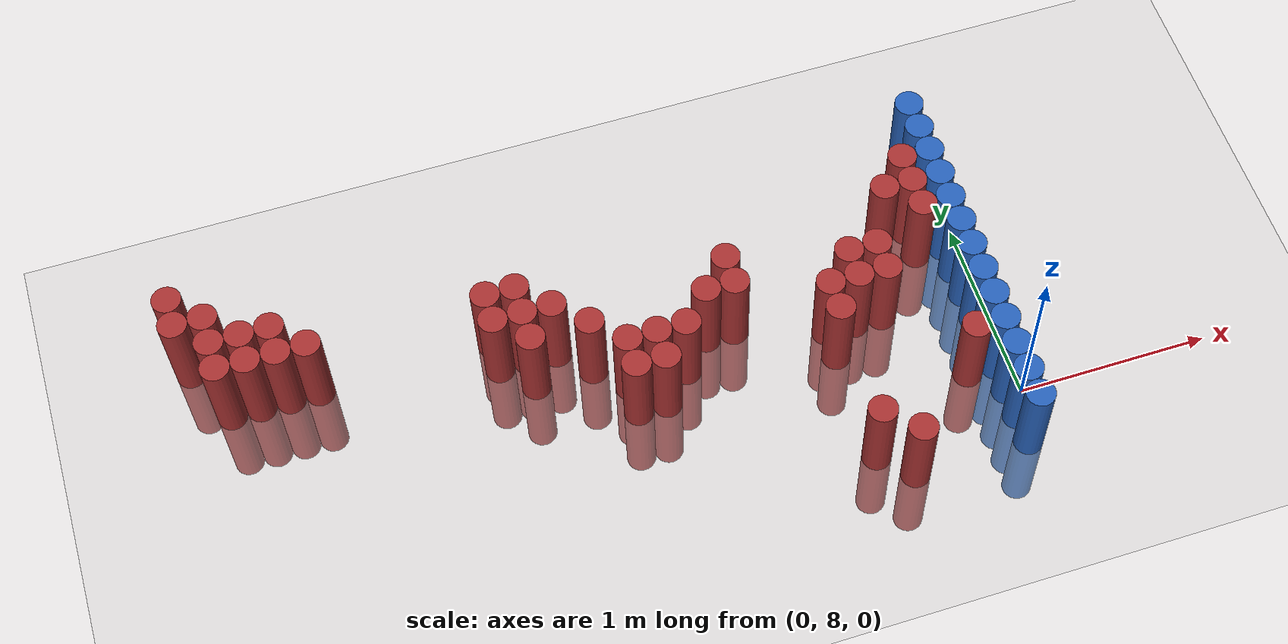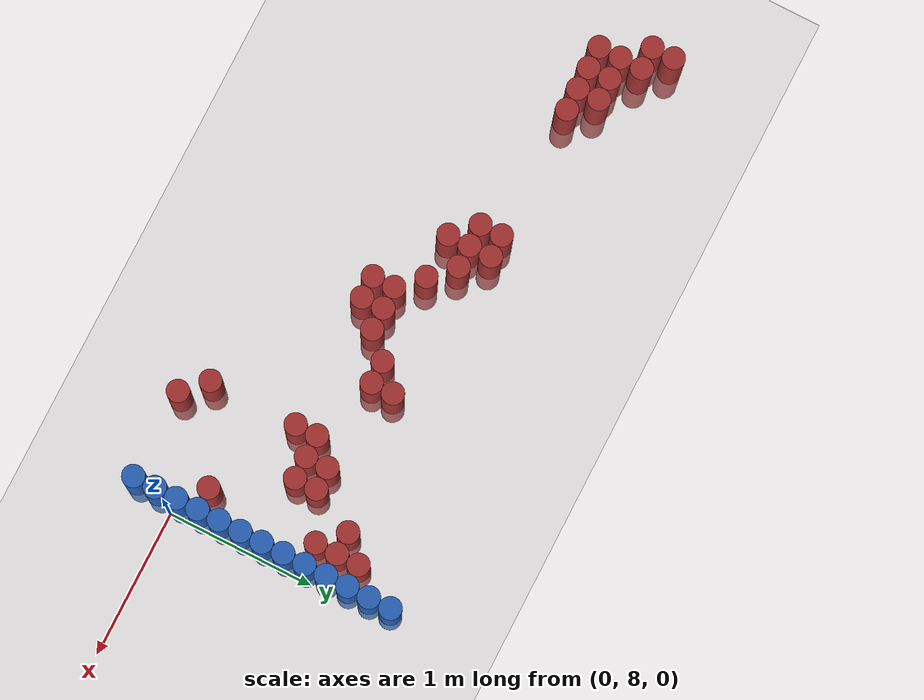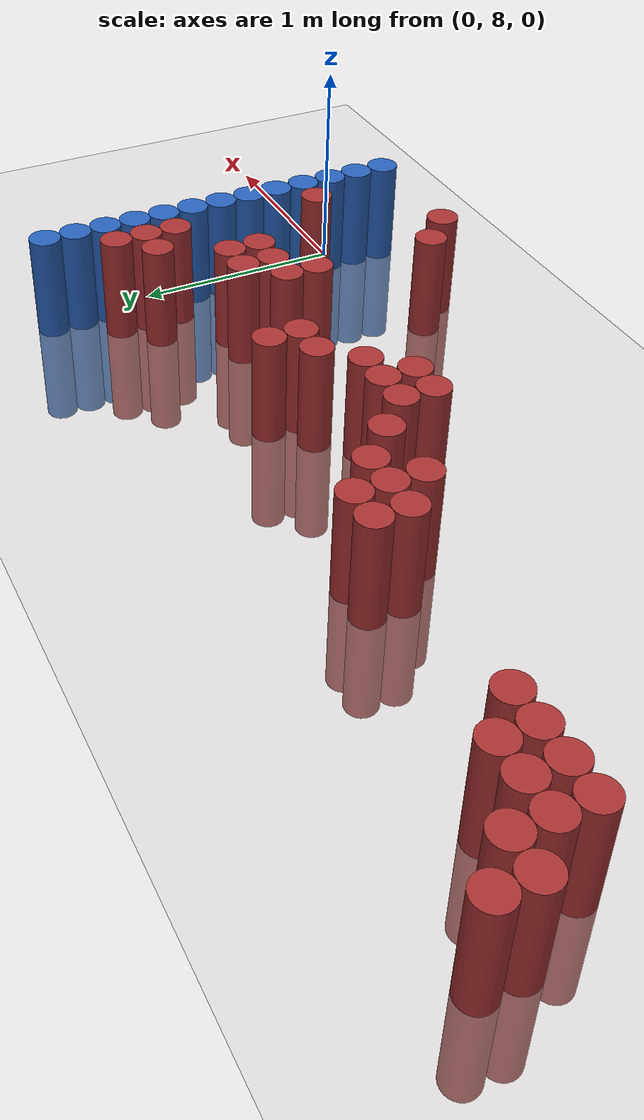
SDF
<sdf version="1.6">
 <world name="default">
  <model name="ground_plane">
   <static>1</static>
   <link name="link">
    <collision name="collision">
     <geometry><plane><normal>0 0 1</normal><size>100 100</size></plane></geometry>
     <surface><friction><ode><mu>100</mu><mu2>50</mu2></ode></friction></surface>
    </collision>
    <visual name="visual">
     <cast_shadows>0</cast_shadows>
     <geometry><plane><normal>0 0 1</normal><size>100 100</size></plane></geometry>
     <material>
      <script><uri>file://media/materials/scripts/gazebo.material</uri><name>Gazebo/Grey</name></script>
     </material>
    </visual>
   </link>
  </model>
  <model name="unit_cylinder_150">
   <static>1</static>
   <pose>-3.975000 9.375000 0.000000 0.000000 0.000000 0.000000</pose>
   <link name="link">
    <inertial>
     <mass>1</mass>
     <inertia><ixx>0.145833</ixx><ixy>0</ixy><ixz>0</ixz><iyy>0.145833</iyy><iyz>0</iyz><izz>0.125</izz></inertia>
    </inertial>
    <collision name="collision">
     <geometry><cylinder><radius>0.075000</radius><length>1</length></cylinder></geometry>
    </collision>
    <visual name="visual">
     <geometry><cylinder><radius>0.075000</radius><length>1</length></cylinder></geometry>
     <material>
      <ambient>0.648000 0.192000 0.192000 1</ambient>
      <diffuse>0.648000 0.192000 0.192000 1</diffuse>
     </material>
     <material>
      <script><name>Gazebo/Grey</name><uri>file://media/materials/scripts/gazebo.material</uri></script>
     </material>
    </visual>
   </link>
  </model>
  <model name="unit_cylinder_151">
   <static>1</static>
   <pose>-3.975000 9.525000 0.000000 0.000000 0.000000 0.000000</pose>
   <link name="link">
    <inertial>
     <mass>1</mass>
     <inertia><ixx>0.145833</ixx><ixy>0</ixy><ixz>0</ixz><iyy>0.145833</iyy><iyz>0</iyz><izz>0.125</izz></inertia>
    </inertial>
    <collision name="collision">
     <geometry><cylinder><radius>0.075000</radius><length>1</length></cylinder></geometry>
    </collision>
    <visual name="visual">
     <geometry><cylinder><radius>0.075000</radius><length>1</length></cylinder></geometry>
     <material>
      <ambient>0.648000 0.192000 0.192000 1</ambient>
      <diffuse>0.648000 0.192000 0.192000 1</diffuse>
     </material>
     <material>
      <script><name>Gazebo/Grey</name><uri>file://media/materials/scripts/gazebo.material</uri></script>
     </material>
    </visual>
   </link>
  </model>
  <model name="unit_cylinder_158">
   <static>1</static>
   <pose>-3.825000 9.075000 0.000000 0.000000 0.000000 0.000000</pose>
   <link name="link">
    <inertial>
     <mass>1</mass>
     <inertia><ixx>0.145833</ixx><ixy>0</ixy><ixz>0</ixz><iyy>0.145833</iyy><iyz>0</iyz><izz>0.125</izz></inertia>
    </inertial>
    <collision name="collision">
     <geometry><cylinder><radius>0.075000</radius><length>1</length></cylinder></geometry>
    </collision>
    <visual name="visual">
     <geometry><cylinder><radius>0.075000</radius><length>1</length></cylinder></geometry>
     <material>
      <ambient>0.648000 0.192000 0.192000 1</ambient>
      <diffuse>0.648000 0.192000 0.192000 1</diffuse>
     </material>
     <material>
      <script><name>Gazebo/Grey</name><uri>file://media/materials/scripts/gazebo.material</uri></script>
     </material>
    </visual>
   </link>
  </model>
  <model name="unit_cylinder_159">
   <static>1</static>
   <pose>-3.825000 9.225000 0.000000 0.000000 0.000000 0.000000</pose>
   <link name="link">
    <inertial>
     <mass>1</mass>
     <inertia><ixx>0.145833</ixx><ixy>0</ixy><ixz>0</ixz><iyy>0.145833</iyy><iyz>0</iyz><izz>0.125</izz></inertia>
    </inertial>
    <collision name="collision">
     <geometry><cylinder><radius>0.075000</radius><length>1</length></cylinder></geometry>
    </collision>
    <visual name="visual">
     <geometry><cylinder><radius>0.075000</radius><length>1</length></cylinder></geometry>
     <material>
      <ambient>0.648000 0.192000 0.192000 1</ambient>
      <diffuse>0.648000 0.192000 0.192000 1</diffuse>
     </material>
     <material>
      <script><name>Gazebo/Grey</name><uri>file://media/materials/scripts/gazebo.material</uri></script>
     </material>
    </visual>
   </link>
  </model>
  <model name="unit_cylinder_160">
   <static>1</static>
   <pose>-3.825000 9.375000 0.000000 0.000000 0.000000 0.000000</pose>
   <link name="link">
    <inertial>
     <mass>1</mass>
     <inertia><ixx>0.145833</ixx><ixy>0</ixy><ixz>0</ixz><iyy>0.145833</iyy><iyz>0</iyz><izz>0.125</izz></inertia>
    </inertial>
    <collision name="collision">
     <geometry><cylinder><radius>0.075000</radius><length>1</length></cylinder></geometry>
    </collision>
    <visual name="visual">
     <geometry><cylinder><radius>0.075000</radius><length>1</length></cylinder></geometry>
     <material>
      <ambient>0.648000 0.192000 0.192000 1</ambient>
      <diffuse>0.648000 0.192000 0.192000 1</diffuse>
     </material>
     <material>
      <script><name>Gazebo/Grey</name><uri>file://media/materials/scripts/gazebo.material</uri></script>
     </material>
    </visual>
   </link>
  </model>
  <model name="unit_cylinder_165">
   <static>1</static>
   <pose>-3.675000 9.075000 0.000000 0.000000 0.000000 0.000000</pose>
   <link name="link">
    <inertial>
     <mass>1</mass>
     <inertia><ixx>0.145833</ixx><ixy>0</ixy><ixz>0</ixz><iyy>0.145833</iyy><iyz>0</iyz><izz>0.125</izz></inertia>
    </inertial>
    <collision name="collision">
     <geometry><cylinder><radius>0.075000</radius><length>1</length></cylinder></geometry>
    </collision>
    <visual name="visual">
     <geometry><cylinder><radius>0.075000</radius><length>1</length></cylinder></geometry>
     <material>
      <ambient>0.648000 0.192000 0.192000 1</ambient>
      <diffuse>0.648000 0.192000 0.192000 1</diffuse>
     </material>
     <material>
      <script><name>Gazebo/Grey</name><uri>file://media/materials/scripts/gazebo.material</uri></script>
     </material>
    </visual>
   </link>
  </model>
  <model name="unit_cylinder_166">
   <static>1</static>
   <pose>-3.675000 9.225000 0.000000 0.000000 0.000000 0.000000</pose>
   <link name="link">
    <inertial>
     <mass>1</mass>
     <inertia><ixx>0.145833</ixx><ixy>0</ixy><ixz>0</ixz><iyy>0.145833</iyy><iyz>0</iyz><izz>0.125</izz></inertia>
    </inertial>
    <collision name="collision">
     <geometry><cylinder><radius>0.075000</radius><length>1</length></cylinder></geometry>
    </collision>
    <visual name="visual">
     <geometry><cylinder><radius>0.075000</radius><length>1</length></cylinder></geometry>
     <material>
      <ambient>0.648000 0.192000 0.192000 1</ambient>
      <diffuse>0.648000 0.192000 0.192000 1</diffuse>
     </material>
     <material>
      <script><name>Gazebo/Grey</name><uri>file://media/materials/scripts/gazebo.material</uri></script>
     </material>
    </visual>
   </link>
  </model>
  <model name="unit_cylinder_168">
   <static>1</static>
   <pose>-3.525000 9.075000 0.000000 0.000000 0.000000 0.000000</pose>
   <link name="link">
    <inertial>
     <mass>1</mass>
     <inertia><ixx>0.145833</ixx><ixy>0</ixy><ixz>0</ixz><iyy>0.145833</iyy><iyz>0</iyz><izz>0.125</izz></inertia>
    </inertial>
    <collision name="collision">
     <geometry><cylinder><radius>0.075000</radius><length>1</length></cylinder></geometry>
    </collision>
    <visual name="visual">
     <geometry><cylinder><radius>0.075000</radius><length>1</length></cylinder></geometry>
     <material>
      <ambient>0.648000 0.192000 0.192000 1</ambient>
      <diffuse>0.648000 0.192000 0.192000 1</diffuse>
     </material>
     <material>
      <script><name>Gazebo/Grey</name><uri>file://media/materials/scripts/gazebo.material</uri></script>
     </material>
    </visual>
   </link>
  </model>
  <model name="unit_cylinder_169">
   <static>1</static>
   <pose>-3.525000 9.225000 0.000000 0.000000 0.000000 0.000000</pose>
   <link name="link">
    <inertial>
     <mass>1</mass>
     <inertia><ixx>0.145833</ixx><ixy>0</ixy><ixz>0</ixz><iyy>0.145833</iyy><iyz>0</iyz><izz>0.125</izz></inertia>
    </inertial>
    <collision name="collision">
     <geometry><cylinder><radius>0.075000</radius><length>1</length></cylinder></geometry>
    </collision>
    <visual name="visual">
     <geometry><cylinder><radius>0.075000</radius><length>1</length></cylinder></geometry>
     <material>
      <ambient>0.648000 0.192000 0.192000 1</ambient>
      <diffuse>0.648000 0.192000 0.192000 1</diffuse>
     </material>
     <material>
      <script><name>Gazebo/Grey</name><uri>file://media/materials/scripts/gazebo.material</uri></script>
     </material>
    </visual>
   </link>
  </model>
  <model name="unit_cylinder_170">
   <static>1</static>
   <pose>-3.375000 9.075000 0.000000 0.000000 0.000000 0.000000</pose>
   <link name="link">
    <inertial>
     <mass>1</mass>
     <inertia><ixx>0.145833</ixx><ixy>0</ixy><ixz>0</ixz><iyy>0.145833</iyy><iyz>0</iyz><izz>0.125</izz></inertia>
    </inertial>
    <collision name="collision">
     <geometry><cylinder><radius>0.075000</radius><length>1</length></cylinder></geometry>
    </collision>
    <visual name="visual">
     <geometry><cylinder><radius>0.075000</radius><length>1</length></cylinder></geometry>
     <material>
      <ambient>0.648000 0.192000 0.192000 1</ambient>
      <diffuse>0.648000 0.192000 0.192000 1</diffuse>
     </material>
     <material>
      <script><name>Gazebo/Grey</name><uri>file://media/materials/scripts/gazebo.material</uri></script>
     </material>
    </visual>
   </link>
  </model>
  <model name="unit_cylinder_179">
   <static>1</static>
   <pose>-2.475000 8.925000 0.000000 0.000000 0.000000 0.000000</pose>
   <link name="link">
    <inertial>
     <mass>1</mass>
     <inertia><ixx>0.145833</ixx><ixy>0</ixy><ixz>0</ixz><iyy>0.145833</iyy><iyz>0</iyz><izz>0.125</izz></inertia>
    </inertial>
    <collision name="collision">
     <geometry><cylinder><radius>0.075000</radius><length>1</length></cylinder></geometry>
    </collision>
    <visual name="visual">
     <geometry><cylinder><radius>0.075000</radius><length>1</length></cylinder></geometry>
     <material>
      <ambient>0.648000 0.192000 0.192000 1</ambient>
      <diffuse>0.648000 0.192000 0.192000 1</diffuse>
     </material>
     <material>
      <script><name>Gazebo/Grey</name><uri>file://media/materials/scripts/gazebo.material</uri></script>
     </material>
    </visual>
   </link>
  </model>
  <model name="unit_cylinder_180">
   <static>1</static>
   <pose>-2.475000 9.075000 0.000000 0.000000 0.000000 0.000000</pose>
   <link name="link">
    <inertial>
     <mass>1</mass>
     <inertia><ixx>0.145833</ixx><ixy>0</ixy><ixz>0</ixz><iyy>0.145833</iyy><iyz>0</iyz><izz>0.125</izz></inertia>
    </inertial>
    <collision name="collision">
     <geometry><cylinder><radius>0.075000</radius><length>1</length></cylinder></geometry>
    </collision>
    <visual name="visual">
     <geometry><cylinder><radius>0.075000</radius><length>1</length></cylinder></geometry>
     <material>
      <ambient>0.648000 0.192000 0.192000 1</ambient>
      <diffuse>0.648000 0.192000 0.192000 1</diffuse>
     </material>
     <material>
      <script><name>Gazebo/Grey</name><uri>file://media/materials/scripts/gazebo.material</uri></script>
     </material>
    </visual>
   </link>
  </model>
  <model name="unit_cylinder_181">
   <static>1</static>
   <pose>-2.325000 8.775000 0.000000 0.000000 0.000000 0.000000</pose>
   <link name="link">
    <inertial>
     <mass>1</mass>
     <inertia><ixx>0.145833</ixx><ixy>0</ixy><ixz>0</ixz><iyy>0.145833</iyy><iyz>0</iyz><izz>0.125</izz></inertia>
    </inertial>
    <collision name="collision">
     <geometry><cylinder><radius>0.075000</radius><length>1</length></cylinder></geometry>
    </collision>
    <visual name="visual">
     <geometry><cylinder><radius>0.075000</radius><length>1</length></cylinder></geometry>
     <material>
      <ambient>0.648000 0.192000 0.192000 1</ambient>
      <diffuse>0.648000 0.192000 0.192000 1</diffuse>
     </material>
     <material>
      <script><name>Gazebo/Grey</name><uri>file://media/materials/scripts/gazebo.material</uri></script>
     </material>
    </visual>
   </link>
  </model>
  <model name="unit_cylinder_182">
   <static>1</static>
   <pose>-2.325000 8.925000 0.000000 0.000000 0.000000 0.000000</pose>
   <link name="link">
    <inertial>
     <mass>1</mass>
     <inertia><ixx>0.145833</ixx><ixy>0</ixy><ixz>0</ixz><iyy>0.145833</iyy><iyz>0</iyz><izz>0.125</izz></inertia>
    </inertial>
    <collision name="collision">
     <geometry><cylinder><radius>0.075000</radius><length>1</length></cylinder></geometry>
    </collision>
    <visual name="visual">
     <geometry><cylinder><radius>0.075000</radius><length>1</length></cylinder></geometry>
     <material>
      <ambient>0.648000 0.192000 0.192000 1</ambient>
      <diffuse>0.648000 0.192000 0.192000 1</diffuse>
     </material>
     <material>
      <script><name>Gazebo/Grey</name><uri>file://media/materials/scripts/gazebo.material</uri></script>
     </material>
    </visual>
   </link>
  </model>
  <model name="unit_cylinder_183">
   <static>1</static>
   <pose>-2.325000 9.075000 0.000000 0.000000 0.000000 0.000000</pose>
   <link name="link">
    <inertial>
     <mass>1</mass>
     <inertia><ixx>0.145833</ixx><ixy>0</ixy><ixz>0</ixz><iyy>0.145833</iyy><iyz>0</iyz><izz>0.125</izz></inertia>
    </inertial>
    <collision name="collision">
     <geometry><cylinder><radius>0.075000</radius><length>1</length></cylinder></geometry>
    </collision>
    <visual name="visual">
     <geometry><cylinder><radius>0.075000</radius><length>1</length></cylinder></geometry>
     <material>
      <ambient>0.648000 0.192000 0.192000 1</ambient>
      <diffuse>0.648000 0.192000 0.192000 1</diffuse>
     </material>
     <material>
      <script><name>Gazebo/Grey</name><uri>file://media/materials/scripts/gazebo.material</uri></script>
     </material>
    </visual>
   </link>
  </model>
  <model name="unit_cylinder_184">
   <static>1</static>
   <pose>-2.175000 8.925000 0.000000 0.000000 0.000000 0.000000</pose>
   <link name="link">
    <inertial>
     <mass>1</mass>
     <inertia><ixx>0.145833</ixx><ixy>0</ixy><ixz>0</ixz><iyy>0.145833</iyy><iyz>0</iyz><izz>0.125</izz></inertia>
    </inertial>
    <collision name="collision">
     <geometry><cylinder><radius>0.075000</radius><length>1</length></cylinder></geometry>
    </collision>
    <visual name="visual">
     <geometry><cylinder><radius>0.075000</radius><length>1</length></cylinder></geometry>
     <material>
      <ambient>0.648000 0.192000 0.192000 1</ambient>
      <diffuse>0.648000 0.192000 0.192000 1</diffuse>
     </material>
     <material>
      <script><name>Gazebo/Grey</name><uri>file://media/materials/scripts/gazebo.material</uri></script>
     </material>
    </visual>
   </link>
  </model>
  <model name="unit_cylinder_185">
   <static>1</static>
   <pose>-2.025000 8.775000 0.000000 0.000000 0.000000 0.000000</pose>
   <link name="link">
    <inertial>
     <mass>1</mass>
     <inertia><ixx>0.145833</ixx><ixy>0</ixy><ixz>0</ixz><iyy>0.145833</iyy><iyz>0</iyz><izz>0.125</izz></inertia>
    </inertial>
    <collision name="collision">
     <geometry><cylinder><radius>0.075000</radius><length>1</length></cylinder></geometry>
    </collision>
    <visual name="visual">
     <geometry><cylinder><radius>0.075000</radius><length>1</length></cylinder></geometry>
     <material>
      <ambient>0.648000 0.192000 0.192000 1</ambient>
      <diffuse>0.648000 0.192000 0.192000 1</diffuse>
     </material>
     <material>
      <script><name>Gazebo/Grey</name><uri>file://media/materials/scripts/gazebo.material</uri></script>
     </material>
    </visual>
   </link>
  </model>
  <model name="unit_cylinder_186">
   <static>1</static>
   <pose>-1.875000 8.475000 0.000000 0.000000 0.000000 0.000000</pose>
   <link name="link">
    <inertial>
     <mass>1</mass>
     <inertia><ixx>0.145833</ixx><ixy>0</ixy><ixz>0</ixz><iyy>0.145833</iyy><iyz>0</iyz><izz>0.125</izz></inertia>
    </inertial>
    <collision name="collision">
     <geometry><cylinder><radius>0.075000</radius><length>1</length></cylinder></geometry>
    </collision>
    <visual name="visual">
     <geometry><cylinder><radius>0.075000</radius><length>1</length></cylinder></geometry>
     <material>
      <ambient>0.648000 0.192000 0.192000 1</ambient>
      <diffuse>0.648000 0.192000 0.192000 1</diffuse>
     </material>
     <material>
      <script><name>Gazebo/Grey</name><uri>file://media/materials/scripts/gazebo.material</uri></script>
     </material>
    </visual>
   </link>
  </model>
  <model name="unit_cylinder_187">
   <static>1</static>
   <pose>-1.875000 8.625000 0.000000 0.000000 0.000000 0.000000</pose>
   <link name="link">
    <inertial>
     <mass>1</mass>
     <inertia><ixx>0.145833</ixx><ixy>0</ixy><ixz>0</ixz><iyy>0.145833</iyy><iyz>0</iyz><izz>0.125</izz></inertia>
    </inertial>
    <collision name="collision">
     <geometry><cylinder><radius>0.075000</radius><length>1</length></cylinder></geometry>
    </collision>
    <visual name="visual">
     <geometry><cylinder><radius>0.075000</radius><length>1</length></cylinder></geometry>
     <material>
      <ambient>0.648000 0.192000 0.192000 1</ambient>
      <diffuse>0.648000 0.192000 0.192000 1</diffuse>
     </material>
     <material>
      <script><name>Gazebo/Grey</name><uri>file://media/materials/scripts/gazebo.material</uri></script>
     </material>
    </visual>
   </link>
  </model>
  <model name="unit_cylinder_188">
   <static>1</static>
   <pose>-1.725000 8.475000 0.000000 0.000000 0.000000 0.000000</pose>
   <link name="link">
    <inertial>
     <mass>1</mass>
     <inertia><ixx>0.145833</ixx><ixy>0</ixy><ixz>0</ixz><iyy>0.145833</iyy><iyz>0</iyz><izz>0.125</izz></inertia>
    </inertial>
    <collision name="collision">
     <geometry><cylinder><radius>0.075000</radius><length>1</length></cylinder></geometry>
    </collision>
    <visual name="visual">
     <geometry><cylinder><radius>0.075000</radius><length>1</length></cylinder></geometry>
     <material>
      <ambient>0.648000 0.192000 0.192000 1</ambient>
      <diffuse>0.648000 0.192000 0.192000 1</diffuse>
     </material>
     <material>
      <script><name>Gazebo/Grey</name><uri>file://media/materials/scripts/gazebo.material</uri></script>
     </material>
    </visual>
   </link>
  </model>
  <model name="unit_cylinder_189">
   <static>1</static>
   <pose>-1.725000 8.625000 0.000000 0.000000 0.000000 0.000000</pose>
   <link name="link">
    <inertial>
     <mass>1</mass>
     <inertia><ixx>0.145833</ixx><ixy>0</ixy><ixz>0</ixz><iyy>0.145833</iyy><iyz>0</iyz><izz>0.125</izz></inertia>
    </inertial>
    <collision name="collision">
     <geometry><cylinder><radius>0.075000</radius><length>1</length></cylinder></geometry>
    </collision>
    <visual name="visual">
     <geometry><cylinder><radius>0.075000</radius><length>1</length></cylinder></geometry>
     <material>
      <ambient>0.648000 0.192000 0.192000 1</ambient>
      <diffuse>0.648000 0.192000 0.192000 1</diffuse>
     </material>
     <material>
      <script><name>Gazebo/Grey</name><uri>file://media/materials/scripts/gazebo.material</uri></script>
     </material>
    </visual>
   </link>
  </model>
  <model name="unit_cylinder_192">
   <static>1</static>
   <pose>-1.575000 8.625000 0.000000 0.000000 0.000000 0.000000</pose>
   <link name="link">
    <inertial>
     <mass>1</mass>
     <inertia><ixx>0.145833</ixx><ixy>0</ixy><ixz>0</ixz><iyy>0.145833</iyy><iyz>0</iyz><izz>0.125</izz></inertia>
    </inertial>
    <collision name="collision">
     <geometry><cylinder><radius>0.075000</radius><length>1</length></cylinder></geometry>
    </collision>
    <visual name="visual">
     <geometry><cylinder><radius>0.075000</radius><length>1</length></cylinder></geometry>
     <material>
      <ambient>0.648000 0.192000 0.192000 1</ambient>
      <diffuse>0.648000 0.192000 0.192000 1</diffuse>
     </material>
     <material>
      <script><name>Gazebo/Grey</name><uri>file://media/materials/scripts/gazebo.material</uri></script>
     </material>
    </visual>
   </link>
  </model>
  <model name="unit_cylinder_196">
   <static>1</static>
   <pose>-1.425000 8.775000 0.000000 0.000000 0.000000 0.000000</pose>
   <link name="link">
    <inertial>
     <mass>1</mass>
     <inertia><ixx>0.145833</ixx><ixy>0</ixy><ixz>0</ixz><iyy>0.145833</iyy><iyz>0</iyz><izz>0.125</izz></inertia>
    </inertial>
    <collision name="collision">
     <geometry><cylinder><radius>0.075000</radius><length>1</length></cylinder></geometry>
    </collision>
    <visual name="visual">
     <geometry><cylinder><radius>0.075000</radius><length>1</length></cylinder></geometry>
     <material>
      <ambient>0.648000 0.192000 0.192000 1</ambient>
      <diffuse>0.648000 0.192000 0.192000 1</diffuse>
     </material>
     <material>
      <script><name>Gazebo/Grey</name><uri>file://media/materials/scripts/gazebo.material</uri></script>
     </material>
    </visual>
   </link>
  </model>
  <model name="unit_cylinder_199">
   <static>1</static>
   <pose>-1.275000 8.775000 0.000000 0.000000 0.000000 0.000000</pose>
   <link name="link">
    <inertial>
     <mass>1</mass>
     <inertia><ixx>0.145833</ixx><ixy>0</ixy><ixz>0</ixz><iyy>0.145833</iyy><iyz>0</iyz><izz>0.125</izz></inertia>
    </inertial>
    <collision name="collision">
     <geometry><cylinder><radius>0.075000</radius><length>1</length></cylinder></geometry>
    </collision>
    <visual name="visual">
     <geometry><cylinder><radius>0.075000</radius><length>1</length></cylinder></geometry>
     <material>
      <ambient>0.648000 0.192000 0.192000 1</ambient>
      <diffuse>0.648000 0.192000 0.192000 1</diffuse>
     </material>
     <material>
      <script><name>Gazebo/Grey</name><uri>file://media/materials/scripts/gazebo.material</uri></script>
     </material>
    </visual>
   </link>
  </model>
  <model name="unit_cylinder_200">
   <static>1</static>
   <pose>-1.275000 8.925000 0.000000 0.000000 0.000000 0.000000</pose>
   <link name="link">
    <inertial>
     <mass>1</mass>
     <inertia><ixx>0.145833</ixx><ixy>0</ixy><ixz>0</ixz><iyy>0.145833</iyy><iyz>0</iyz><izz>0.125</izz></inertia>
    </inertial>
    <collision name="collision">
     <geometry><cylinder><radius>0.075000</radius><length>1</length></cylinder></geometry>
    </collision>
    <visual name="visual">
     <geometry><cylinder><radius>0.075000</radius><length>1</length></cylinder></geometry>
     <material>
      <ambient>0.648000 0.192000 0.192000 1</ambient>
      <diffuse>0.648000 0.192000 0.192000 1</diffuse>
     </material>
     <material>
      <script><name>Gazebo/Grey</name><uri>file://media/materials/scripts/gazebo.material</uri></script>
     </material>
    </visual>
   </link>
  </model>
  <model name="unit_cylinder_208">
   <static>1</static>
   <pose>-0.825000 7.875000 0.000000 0.000000 0.000000 0.000000</pose>
   <link name="link">
    <inertial>
     <mass>1</mass>
     <inertia><ixx>0.145833</ixx><ixy>0</ixy><ixz>0</ixz><iyy>0.145833</iyy><iyz>0</iyz><izz>0.125</izz></inertia>
    </inertial>
    <collision name="collision">
     <geometry><cylinder><radius>0.075000</radius><length>1</length></cylinder></geometry>
    </collision>
    <visual name="visual">
     <geometry><cylinder><radius>0.075000</radius><length>1</length></cylinder></geometry>
     <material>
      <ambient>0.648000 0.192000 0.192000 1</ambient>
      <diffuse>0.648000 0.192000 0.192000 1</diffuse>
     </material>
     <material>
      <script><name>Gazebo/Grey</name><uri>file://media/materials/scripts/gazebo.material</uri></script>
     </material>
    </visual>
   </link>
  </model>
  <model name="unit_cylinder_209">
   <static>1</static>
   <pose>-0.825000 8.475000 0.000000 0.000000 0.000000 0.000000</pose>
   <link name="link">
    <inertial>
     <mass>1</mass>
     <inertia><ixx>0.145833</ixx><ixy>0</ixy><ixz>0</ixz><iyy>0.145833</iyy><iyz>0</iyz><izz>0.125</izz></inertia>
    </inertial>
    <collision name="collision">
     <geometry><cylinder><radius>0.075000</radius><length>1</length></cylinder></geometry>
    </collision>
    <visual name="visual">
     <geometry><cylinder><radius>0.075000</radius><length>1</length></cylinder></geometry>
     <material>
      <ambient>0.648000 0.192000 0.192000 1</ambient>
      <diffuse>0.648000 0.192000 0.192000 1</diffuse>
     </material>
     <material>
      <script><name>Gazebo/Grey</name><uri>file://media/materials/scripts/gazebo.material</uri></script>
     </material>
    </visual>
   </link>
  </model>
  <model name="unit_cylinder_210">
   <static>1</static>
   <pose>-0.825000 8.625000 0.000000 0.000000 0.000000 0.000000</pose>
   <link name="link">
    <inertial>
     <mass>1</mass>
     <inertia><ixx>0.145833</ixx><ixy>0</ixy><ixz>0</ixz><iyy>0.145833</iyy><iyz>0</iyz><izz>0.125</izz></inertia>
    </inertial>
    <collision name="collision">
     <geometry><cylinder><radius>0.075000</radius><length>1</length></cylinder></geometry>
    </collision>
    <visual name="visual">
     <geometry><cylinder><radius>0.075000</radius><length>1</length></cylinder></geometry>
     <material>
      <ambient>0.648000 0.192000 0.192000 1</ambient>
      <diffuse>0.648000 0.192000 0.192000 1</diffuse>
     </material>
     <material>
      <script><name>Gazebo/Grey</name><uri>file://media/materials/scripts/gazebo.material</uri></script>
     </material>
    </visual>
   </link>
  </model>
  <model name="unit_cylinder_211">
   <static>1</static>
   <pose>-0.675000 7.725000 0.000000 0.000000 0.000000 0.000000</pose>
   <link name="link">
    <inertial>
     <mass>1</mass>
     <inertia><ixx>0.145833</ixx><ixy>0</ixy><ixz>0</ixz><iyy>0.145833</iyy><iyz>0</iyz><izz>0.125</izz></inertia>
    </inertial>
    <collision name="collision">
     <geometry><cylinder><radius>0.075000</radius><length>1</length></cylinder></geometry>
    </collision>
    <visual name="visual">
     <geometry><cylinder><radius>0.075000</radius><length>1</length></cylinder></geometry>
     <material>
      <ambient>0.648000 0.192000 0.192000 1</ambient>
      <diffuse>0.648000 0.192000 0.192000 1</diffuse>
     </material>
     <material>
      <script><name>Gazebo/Grey</name><uri>file://media/materials/scripts/gazebo.material</uri></script>
     </material>
    </visual>
   </link>
  </model>
  <model name="unit_cylinder_212">
   <static>1</static>
   <pose>-0.675000 8.625000 0.000000 0.000000 0.000000 0.000000</pose>
   <link name="link">
    <inertial>
     <mass>1</mass>
     <inertia><ixx>0.145833</ixx><ixy>0</ixy><ixz>0</ixz><iyy>0.145833</iyy><iyz>0</iyz><izz>0.125</izz></inertia>
    </inertial>
    <collision name="collision">
     <geometry><cylinder><radius>0.075000</radius><length>1</length></cylinder></geometry>
    </collision>
    <visual name="visual">
     <geometry><cylinder><radius>0.075000</radius><length>1</length></cylinder></geometry>
     <material>
      <ambient>0.648000 0.192000 0.192000 1</ambient>
      <diffuse>0.648000 0.192000 0.192000 1</diffuse>
     </material>
     <material>
      <script><name>Gazebo/Grey</name><uri>file://media/materials/scripts/gazebo.material</uri></script>
     </material>
    </visual>
   </link>
  </model>
  <model name="unit_cylinder_213">
   <static>1</static>
   <pose>-0.675000 8.775000 0.000000 0.000000 0.000000 0.000000</pose>
   <link name="link">
    <inertial>
     <mass>1</mass>
     <inertia><ixx>0.145833</ixx><ixy>0</ixy><ixz>0</ixz><iyy>0.145833</iyy><iyz>0</iyz><izz>0.125</izz></inertia>
    </inertial>
    <collision name="collision">
     <geometry><cylinder><radius>0.075000</radius><length>1</length></cylinder></geometry>
    </collision>
    <visual name="visual">
     <geometry><cylinder><radius>0.075000</radius><length>1</length></cylinder></geometry>
     <material>
      <ambient>0.648000 0.192000 0.192000 1</ambient>
      <diffuse>0.648000 0.192000 0.192000 1</diffuse>
     </material>
     <material>
      <script><name>Gazebo/Grey</name><uri>file://media/materials/scripts/gazebo.material</uri></script>
     </material>
    </visual>
   </link>
  </model>
  <model name="unit_cylinder_214">
   <static>1</static>
   <pose>-0.525000 8.625000 0.000000 0.000000 0.000000 0.000000</pose>
   <link name="link">
    <inertial>
     <mass>1</mass>
     <inertia><ixx>0.145833</ixx><ixy>0</ixy><ixz>0</ixz><iyy>0.145833</iyy><iyz>0</iyz><izz>0.125</izz></inertia>
    </inertial>
    <collision name="collision">
     <geometry><cylinder><radius>0.075000</radius><length>1</length></cylinder></geometry>
    </collision>
    <visual name="visual">
     <geometry><cylinder><radius>0.075000</radius><length>1</length></cylinder></geometry>
     <material>
      <ambient>0.648000 0.192000 0.192000 1</ambient>
      <diffuse>0.648000 0.192000 0.192000 1</diffuse>
     </material>
     <material>
      <script><name>Gazebo/Grey</name><uri>file://media/materials/scripts/gazebo.material</uri></script>
     </material>
    </visual>
   </link>
  </model>
  <model name="unit_cylinder_215">
   <static>1</static>
   <pose>-0.525000 8.775000 0.000000 0.000000 0.000000 0.000000</pose>
   <link name="link">
    <inertial>
     <mass>1</mass>
     <inertia><ixx>0.145833</ixx><ixy>0</ixy><ixz>0</ixz><iyy>0.145833</iyy><iyz>0</iyz><izz>0.125</izz></inertia>
    </inertial>
    <collision name="collision">
     <geometry><cylinder><radius>0.075000</radius><length>1</length></cylinder></geometry>
    </collision>
    <visual name="visual">
     <geometry><cylinder><radius>0.075000</radius><length>1</length></cylinder></geometry>
     <material>
      <ambient>0.648000 0.192000 0.192000 1</ambient>
      <diffuse>0.648000 0.192000 0.192000 1</diffuse>
     </material>
     <material>
      <script><name>Gazebo/Grey</name><uri>file://media/materials/scripts/gazebo.material</uri></script>
     </material>
    </visual>
   </link>
  </model>
  <model name="unit_cylinder_216">
   <static>1</static>
   <pose>-0.375000 9.075000 0.000000 0.000000 0.000000 0.000000</pose>
   <link name="link">
    <inertial>
     <mass>1</mass>
     <inertia><ixx>0.145833</ixx><ixy>0</ixy><ixz>0</ixz><iyy>0.145833</iyy><iyz>0</iyz><izz>0.125</izz></inertia>
    </inertial>
    <collision name="collision">
     <geometry><cylinder><radius>0.075000</radius><length>1</length></cylinder></geometry>
    </collision>
    <visual name="visual">
     <geometry><cylinder><radius>0.075000</radius><length>1</length></cylinder></geometry>
     <material>
      <ambient>0.648000 0.192000 0.192000 1</ambient>
      <diffuse>0.648000 0.192000 0.192000 1</diffuse>
     </material>
     <material>
      <script><name>Gazebo/Grey</name><uri>file://media/materials/scripts/gazebo.material</uri></script>
     </material>
    </visual>
   </link>
  </model>
  <model name="unit_cylinder_222">
   <static>1</static>
   <pose>-0.225000 8.175000 0.000000 0.000000 0.000000 0.000000</pose>
   <link name="link">
    <inertial>
     <mass>1</mass>
     <inertia><ixx>0.145833</ixx><ixy>0</ixy><ixz>0</ixz><iyy>0.145833</iyy><iyz>0</iyz><izz>0.125</izz></inertia>
    </inertial>
    <collision name="collision">
     <geometry><cylinder><radius>0.075000</radius><length>1</length></cylinder></geometry>
    </collision>
    <visual name="visual">
     <geometry><cylinder><radius>0.075000</radius><length>1</length></cylinder></geometry>
     <material>
      <ambient>0.648000 0.192000 0.192000 1</ambient>
      <diffuse>0.648000 0.192000 0.192000 1</diffuse>
     </material>
     <material>
      <script><name>Gazebo/Grey</name><uri>file://media/materials/scripts/gazebo.material</uri></script>
     </material>
    </visual>
   </link>
  </model>
  <model name="unit_cylinder_223">
   <static>1</static>
   <pose>-0.225000 8.925000 0.000000 0.000000 0.000000 0.000000</pose>
   <link name="link">
    <inertial>
     <mass>1</mass>
     <inertia><ixx>0.145833</ixx><ixy>0</ixy><ixz>0</ixz><iyy>0.145833</iyy><iyz>0</iyz><izz>0.125</izz></inertia>
    </inertial>
    <collision name="collision">
     <geometry><cylinder><radius>0.075000</radius><length>1</length></cylinder></geometry>
    </collision>
    <visual name="visual">
     <geometry><cylinder><radius>0.075000</radius><length>1</length></cylinder></geometry>
     <material>
      <ambient>0.648000 0.192000 0.192000 1</ambient>
      <diffuse>0.648000 0.192000 0.192000 1</diffuse>
     </material>
     <material>
      <script><name>Gazebo/Grey</name><uri>file://media/materials/scripts/gazebo.material</uri></script>
     </material>
    </visual>
   </link>
  </model>
  <model name="unit_cylinder_224">
   <static>1</static>
   <pose>-0.225000 9.075000 0.000000 0.000000 0.000000 0.000000</pose>
   <link name="link">
    <inertial>
     <mass>1</mass>
     <inertia><ixx>0.145833</ixx><ixy>0</ixy><ixz>0</ixz><iyy>0.145833</iyy><iyz>0</iyz><izz>0.125</izz></inertia>
    </inertial>
    <collision name="collision">
     <geometry><cylinder><radius>0.075000</radius><length>1</length></cylinder></geometry>
    </collision>
    <visual name="visual">
     <geometry><cylinder><radius>0.075000</radius><length>1</length></cylinder></geometry>
     <material>
      <ambient>0.648000 0.192000 0.192000 1</ambient>
      <diffuse>0.648000 0.192000 0.192000 1</diffuse>
     </material>
     <material>
      <script><name>Gazebo/Grey</name><uri>file://media/materials/scripts/gazebo.material</uri></script>
     </material>
    </visual>
   </link>
  </model>
  <model name="unit_cylinder_225">
   <static>1</static>
   <pose>-0.225000 9.225000 0.000000 0.000000 0.000000 0.000000</pose>
   <link name="link">
    <inertial>
     <mass>1</mass>
     <inertia><ixx>0.145833</ixx><ixy>0</ixy><ixz>0</ixz><iyy>0.145833</iyy><iyz>0</iyz><izz>0.125</izz></inertia>
    </inertial>
    <collision name="collision">
     <geometry><cylinder><radius>0.075000</radius><length>1</length></cylinder></geometry>
    </collision>
    <visual name="visual">
     <geometry><cylinder><radius>0.075000</radius><length>1</length></cylinder></geometry>
     <material>
      <ambient>0.648000 0.192000 0.192000 1</ambient>
      <diffuse>0.648000 0.192000 0.192000 1</diffuse>
     </material>
     <material>
      <script><name>Gazebo/Grey</name><uri>file://media/materials/scripts/gazebo.material</uri></script>
     </material>
    </visual>
   </link>
  </model>
  <model name="unit_cylinder_243">
   <static>1</static>
   <pose>-0.075000 7.725000 0.000000 0.000000 0.000000 0.000000</pose>
   <link name="link">
    <inertial>
     <mass>1</mass>
     <inertia><ixx>0.145833</ixx><ixy>0</ixy><ixz>0</ixz><iyy>0.145833</iyy><iyz>0</iyz><izz>0.125</izz></inertia>
    </inertial>
    <collision name="collision">
     <geometry><cylinder><radius>0.075000</radius><length>1</length></cylinder></geometry>
    </collision>
    <visual name="visual">
     <geometry><cylinder><radius>0.075000</radius><length>1</length></cylinder></geometry>
     <material>
      <ambient>0.152000 0.379000 0.720000 1</ambient>
      <diffuse>0.152000 0.379000 0.720000 1</diffuse>
     </material>
     <material>
      <script><name>Gazebo/Grey</name><uri>file://media/materials/scripts/gazebo.material</uri></script>
     </material>
    </visual>
   </link>
  </model>
  <model name="unit_cylinder_244">
   <static>1</static>
   <pose>-0.075000 7.875000 0.000000 0.000000 0.000000 0.000000</pose>
   <link name="link">
    <inertial>
     <mass>1</mass>
     <inertia><ixx>0.145833</ixx><ixy>0</ixy><ixz>0</ixz><iyy>0.145833</iyy><iyz>0</iyz><izz>0.125</izz></inertia>
    </inertial>
    <collision name="collision">
     <geometry><cylinder><radius>0.075000</radius><length>1</length></cylinder></geometry>
    </collision>
    <visual name="visual">
     <geometry><cylinder><radius>0.075000</radius><length>1</length></cylinder></geometry>
     <material>
      <ambient>0.152000 0.379000 0.720000 1</ambient>
      <diffuse>0.152000 0.379000 0.720000 1</diffuse>
     </material>
     <material>
      <script><name>Gazebo/Grey</name><uri>file://media/materials/scripts/gazebo.material</uri></script>
     </material>
    </visual>
   </link>
  </model>
  <model name="unit_cylinder_245">
   <static>1</static>
   <pose>-0.075000 8.025000 0.000000 0.000000 0.000000 0.000000</pose>
   <link name="link">
    <inertial>
     <mass>1</mass>
     <inertia><ixx>0.145833</ixx><ixy>0</ixy><ixz>0</ixz><iyy>0.145833</iyy><iyz>0</iyz><izz>0.125</izz></inertia>
    </inertial>
    <collision name="collision">
     <geometry><cylinder><radius>0.075000</radius><length>1</length></cylinder></geometry>
    </collision>
    <visual name="visual">
     <geometry><cylinder><radius>0.075000</radius><length>1</length></cylinder></geometry>
     <material>
      <ambient>0.152000 0.379000 0.720000 1</ambient>
      <diffuse>0.152000 0.379000 0.720000 1</diffuse>
     </material>
     <material>
      <script><name>Gazebo/Grey</name><uri>file://media/materials/scripts/gazebo.material</uri></script>
     </material>
    </visual>
   </link>
  </model>
  <model name="unit_cylinder_246">
   <static>1</static>
   <pose>-0.075000 8.175000 0.000000 0.000000 0.000000 0.000000</pose>
   <link name="link">
    <inertial>
     <mass>1</mass>
     <inertia><ixx>0.145833</ixx><ixy>0</ixy><ixz>0</ixz><iyy>0.145833</iyy><iyz>0</iyz><izz>0.125</izz></inertia>
    </inertial>
    <collision name="collision">
     <geometry><cylinder><radius>0.075000</radius><length>1</length></cylinder></geometry>
    </collision>
    <visual name="visual">
     <geometry><cylinder><radius>0.075000</radius><length>1</length></cylinder></geometry>
     <material>
      <ambient>0.152000 0.379000 0.720000 1</ambient>
      <diffuse>0.152000 0.379000 0.720000 1</diffuse>
     </material>
     <material>
      <script><name>Gazebo/Grey</name><uri>file://media/materials/scripts/gazebo.material</uri></script>
     </material>
    </visual>
   </link>
  </model>
  <model name="unit_cylinder_247">
   <static>1</static>
   <pose>-0.075000 8.325000 0.000000 0.000000 0.000000 0.000000</pose>
   <link name="link">
    <inertial>
     <mass>1</mass>
     <inertia><ixx>0.145833</ixx><ixy>0</ixy><ixz>0</ixz><iyy>0.145833</iyy><iyz>0</iyz><izz>0.125</izz></inertia>
    </inertial>
    <collision name="collision">
     <geometry><cylinder><radius>0.075000</radius><length>1</length></cylinder></geometry>
    </collision>
    <visual name="visual">
     <geometry><cylinder><radius>0.075000</radius><length>1</length></cylinder></geometry>
     <material>
      <ambient>0.152000 0.379000 0.720000 1</ambient>
      <diffuse>0.152000 0.379000 0.720000 1</diffuse>
     </material>
     <material>
      <script><name>Gazebo/Grey</name><uri>file://media/materials/scripts/gazebo.material</uri></script>
     </material>
    </visual>
   </link>
  </model>
  <model name="unit_cylinder_248">
   <static>1</static>
   <pose>-0.075000 8.475000 0.000000 0.000000 0.000000 0.000000</pose>
   <link name="link">
    <inertial>
     <mass>1</mass>
     <inertia><ixx>0.145833</ixx><ixy>0</ixy><ixz>0</ixz><iyy>0.145833</iyy><iyz>0</iyz><izz>0.125</izz></inertia>
    </inertial>
    <collision name="collision">
     <geometry><cylinder><radius>0.075000</radius><length>1</length></cylinder></geometry>
    </collision>
    <visual name="visual">
     <geometry><cylinder><radius>0.075000</radius><length>1</length></cylinder></geometry>
     <material>
      <ambient>0.152000 0.379000 0.720000 1</ambient>
      <diffuse>0.152000 0.379000 0.720000 1</diffuse>
     </material>
     <material>
      <script><name>Gazebo/Grey</name><uri>file://media/materials/scripts/gazebo.material</uri></script>
     </material>
    </visual>
   </link>
  </model>
  <model name="unit_cylinder_249">
   <static>1</static>
   <pose>-0.075000 8.625000 0.000000 0.000000 0.000000 0.000000</pose>
   <link name="link">
    <inertial>
     <mass>1</mass>
     <inertia><ixx>0.145833</ixx><ixy>0</ixy><ixz>0</ixz><iyy>0.145833</iyy><iyz>0</iyz><izz>0.125</izz></inertia>
    </inertial>
    <collision name="collision">
     <geometry><cylinder><radius>0.075000</radius><length>1</length></cylinder></geometry>
    </collision>
    <visual name="visual">
     <geometry><cylinder><radius>0.075000</radius><length>1</length></cylinder></geometry>
     <material>
      <ambient>0.152000 0.379000 0.720000 1</ambient>
      <diffuse>0.152000 0.379000 0.720000 1</diffuse>
     </material>
     <material>
      <script><name>Gazebo/Grey</name><uri>file://media/materials/scripts/gazebo.material</uri></script>
     </material>
    </visual>
   </link>
  </model>
  <model name="unit_cylinder_250">
   <static>1</static>
   <pose>-0.075000 8.775000 0.000000 0.000000 0.000000 0.000000</pose>
   <link name="link">
    <inertial>
     <mass>1</mass>
     <inertia><ixx>0.145833</ixx><ixy>0</ixy><ixz>0</ixz><iyy>0.145833</iyy><iyz>0</iyz><izz>0.125</izz></inertia>
    </inertial>
    <collision name="collision">
     <geometry><cylinder><radius>0.075000</radius><length>1</length></cylinder></geometry>
    </collision>
    <visual name="visual">
     <geometry><cylinder><radius>0.075000</radius><length>1</length></cylinder></geometry>
     <material>
      <ambient>0.152000 0.379000 0.720000 1</ambient>
      <diffuse>0.152000 0.379000 0.720000 1</diffuse>
     </material>
     <material>
      <script><name>Gazebo/Grey</name><uri>file://media/materials/scripts/gazebo.material</uri></script>
     </material>
    </visual>
   </link>
  </model>
  <model name="unit_cylinder_251">
   <static>1</static>
   <pose>-0.075000 8.925000 0.000000 0.000000 0.000000 0.000000</pose>
   <link name="link">
    <inertial>
     <mass>1</mass>
     <inertia><ixx>0.145833</ixx><ixy>0</ixy><ixz>0</ixz><iyy>0.145833</iyy><iyz>0</iyz><izz>0.125</izz></inertia>
    </inertial>
    <collision name="collision">
     <geometry><cylinder><radius>0.075000</radius><length>1</length></cylinder></geometry>
    </collision>
    <visual name="visual">
     <geometry><cylinder><radius>0.075000</radius><length>1</length></cylinder></geometry>
     <material>
      <ambient>0.152000 0.379000 0.720000 1</ambient>
      <diffuse>0.152000 0.379000 0.720000 1</diffuse>
     </material>
     <material>
      <script><name>Gazebo/Grey</name><uri>file://media/materials/scripts/gazebo.material</uri></script>
     </material>
    </visual>
   </link>
  </model>
  <model name="unit_cylinder_252">
   <static>1</static>
   <pose>-0.075000 9.075000 0.000000 0.000000 0.000000 0.000000</pose>
   <link name="link">
    <inertial>
     <mass>1</mass>
     <inertia><ixx>0.145833</ixx><ixy>0</ixy><ixz>0</ixz><iyy>0.145833</iyy><iyz>0</iyz><izz>0.125</izz></inertia>
    </inertial>
    <collision name="collision">
     <geometry><cylinder><radius>0.075000</radius><length>1</length></cylinder></geometry>
    </collision>
    <visual name="visual">
     <geometry><cylinder><radius>0.075000</radius><length>1</length></cylinder></geometry>
     <material>
      <ambient>0.152000 0.379000 0.720000 1</ambient>
      <diffuse>0.152000 0.379000 0.720000 1</diffuse>
     </material>
     <material>
      <script><name>Gazebo/Grey</name><uri>file://media/materials/scripts/gazebo.material</uri></script>
     </material>
    </visual>
   </link>
  </model>
  <model name="unit_cylinder_253">
   <static>1</static>
   <pose>-0.075000 9.225000 0.000000 0.000000 0.000000 0.000000</pose>
   <link name="link">
    <inertial>
     <mass>1</mass>
     <inertia><ixx>0.145833</ixx><ixy>0</ixy><ixz>0</ixz><iyy>0.145833</iyy><iyz>0</iyz><izz>0.125</izz></inertia>
    </inertial>
    <collision name="collision">
     <geometry><cylinder><radius>0.075000</radius><length>1</length></cylinder></geometry>
    </collision>
    <visual name="visual">
     <geometry><cylinder><radius>0.075000</radius><length>1</length></cylinder></geometry>
     <material>
      <ambient>0.152000 0.379000 0.720000 1</ambient>
      <diffuse>0.152000 0.379000 0.720000 1</diffuse>
     </material>
     <material>
      <script><name>Gazebo/Grey</name><uri>file://media/materials/scripts/gazebo.material</uri></script>
     </material>
    </visual>
   </link>
  </model>
  <model name="unit_cylinder_254">
   <static>1</static>
   <pose>-0.075000 9.375000 0.000000 0.000000 0.000000 0.000000</pose>
   <link name="link">
    <inertial>
     <mass>1</mass>
     <inertia><ixx>0.145833</ixx><ixy>0</ixy><ixz>0</ixz><iyy>0.145833</iyy><iyz>0</iyz><izz>0.125</izz></inertia>
    </inertial>
    <collision name="collision">
     <geometry><cylinder><radius>0.075000</radius><length>1</length></cylinder></geometry>
    </collision>
    <visual name="visual">
     <geometry><cylinder><radius>0.075000</radius><length>1</length></cylinder></geometry>
     <material>
      <ambient>0.152000 0.379000 0.720000 1</ambient>
      <diffuse>0.152000 0.379000 0.720000 1</diffuse>
     </material>
     <material>
      <script><name>Gazebo/Grey</name><uri>file://media/materials/scripts/gazebo.material</uri></script>
     </material>
    </visual>
   </link>
  </model>
  <model name="unit_cylinder_255">
   <static>1</static>
   <pose>-0.075000 9.525000 0.000000 0.000000 0.000000 0.000000</pose>
   <link name="link">
    <inertial>
     <mass>1</mass>
     <inertia><ixx>0.145833</ixx><ixy>0</ixy><ixz>0</ixz><iyy>0.145833</iyy><iyz>0</iyz><izz>0.125</izz></inertia>
    </inertial>
    <collision name="collision">
     <geometry><cylinder><radius>0.075000</radius><length>1</length></cylinder></geometry>
    </collision>
    <visual name="visual">
     <geometry><cylinder><radius>0.075000</radius><length>1</length></cylinder></geometry>
     <material>
      <ambient>0.152000 0.379000 0.720000 1</ambient>
      <diffuse>0.152000 0.379000 0.720000 1</diffuse>
     </material>
     <material>
      <script><name>Gazebo/Grey</name><uri>file://media/materials/scripts/gazebo.material</uri></script>
     </material>
    </visual>
   </link>
  </model>
 </world>
</sdf>
